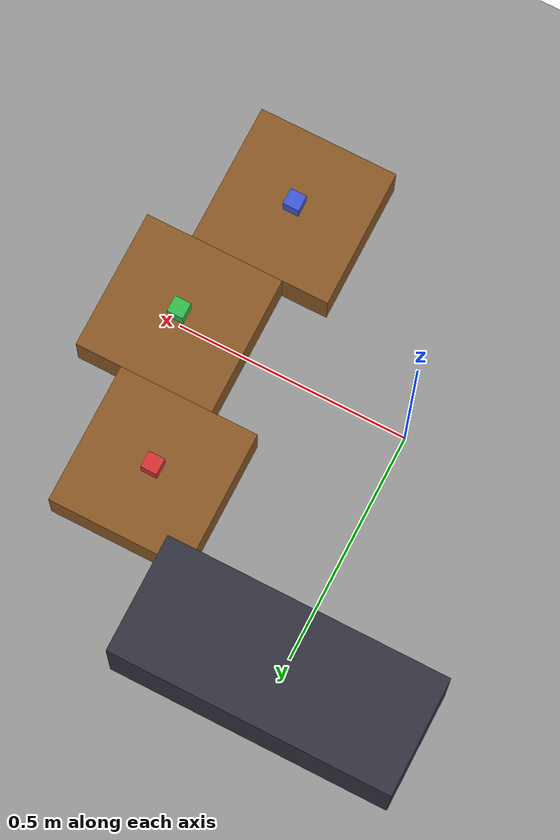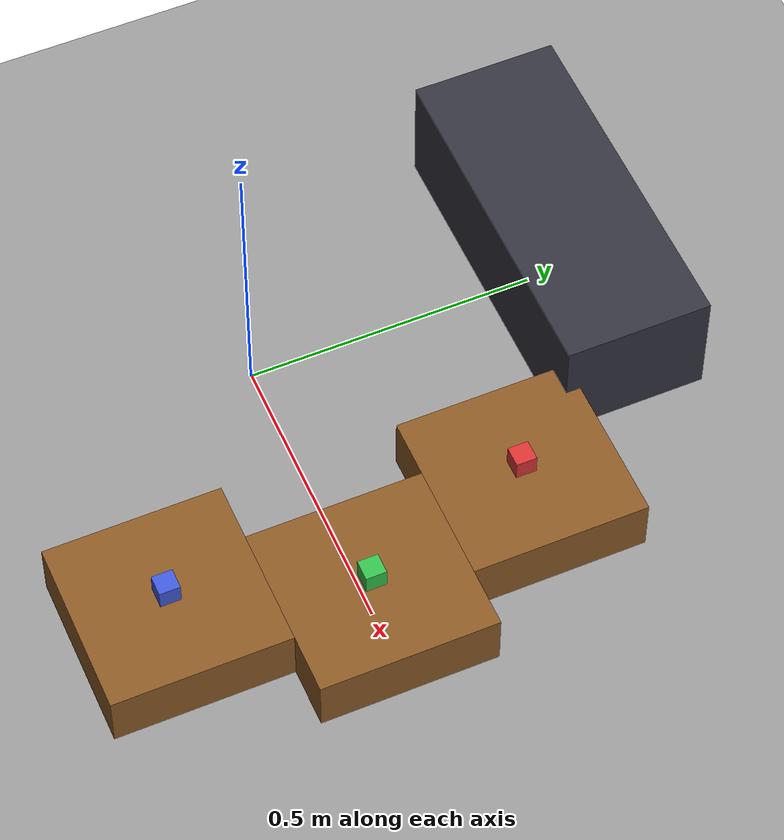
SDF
<?xml version="1.0" ?>
<sdf version="1.9">
  <world name="pallets_world">
    <physics name="1ms" type="ignored">
      <max_step_size>0.001</max_step_size>
      <real_time_factor>1.0</real_time_factor>
    </physics>
    <plugin filename="gz-sim-physics-system" name="gz::sim::systems::Physics"></plugin>
    <plugin filename="gz-sim-scene-broadcaster-system" name="gz::sim::systems::SceneBroadcaster"></plugin>
    <plugin filename="gz-sim-user-commands-system" name="gz::sim::systems::UserCommands"></plugin>
    <!-- 카메라 센서를 쓰려면 렌더링 시스템 플러그인이 필요함 (없으면 카메라가
         토픽에 아무것도 안 찍음). WSLg 화면 캡처가 근본적으로 안 되는 문제를
         우회하기 위해, 화면을 캡처하는 대신 이 카메라가 직접 렌더링한 영상을
         ROS2 토픽으로 받아서 데모 페이지에 스트리밍한다. -->
    <plugin filename="gz-sim-sensors-system" name="gz::sim::systems::Sensors">
      <render_engine>ogre2</render_engine>
    </plugin>

    <light type="directional" name="sun">
      <cast_shadows>true</cast_shadows>
      <pose>0 0 10 0 0 0</pose>
      <diffuse>0.8 0.8 0.8 1</diffuse>
      <specular>0.2 0.2 0.2 1</specular>
      <direction>-0.5 0.1 -0.9</direction>
    </light>

    <model name="ground_plane">
      <static>true</static>
      <link name="link">
        <collision name="collision">
          <geometry><plane><normal>0 0 1</normal><size>10 10</size></plane></geometry>
        </collision>
        <visual name="visual">
          <geometry><plane><normal>0 0 1</normal><size>10 10</size></plane></geometry>
          <material>
            <ambient>0.6 0.6 0.6 1</ambient>
            <diffuse>0.6 0.6 0.6 1</diffuse>
          </material>
        </visual>
      </link>
    </model>

    <!-- 로봇은 원점(0,0,0)에 panda_link0 기준으로 놓일 예정.
         팔레트/컨베이어는 그 앞쪽 반경 0.4~0.5m 안쪽(Panda 리치 약 0.855m)에 배치. -->

    <model name="pallet_1">
      <static>true</static>
      <pose>0.4 0.3 0.05 0 0 0</pose>
      <link name="link">
        <collision name="collision">
          <geometry><box><size>0.3 0.3 0.1</size></box></geometry>
          <surface><friction><ode><mu>1.0</mu><mu2>1.0</mu2></ode></friction></surface>
        </collision>
        <visual name="visual">
          <geometry><box><size>0.3 0.3 0.1</size></box></geometry>
          <material>
            <ambient>0.55 0.35 0.15 1</ambient>
            <diffuse>0.55 0.35 0.15 1</diffuse>
          </material>
        </visual>
      </link>
    </model>

    <model name="pallet_2">
      <static>true</static>
      <pose>0.5 0.0 0.05 0 0 0</pose>
      <link name="link">
        <collision name="collision">
          <geometry><box><size>0.3 0.3 0.1</size></box></geometry>
          <surface><friction><ode><mu>1.0</mu><mu2>1.0</mu2></ode></friction></surface>
        </collision>
        <visual name="visual">
          <geometry><box><size>0.3 0.3 0.1</size></box></geometry>
          <material>
            <ambient>0.55 0.35 0.15 1</ambient>
            <diffuse>0.55 0.35 0.15 1</diffuse>
          </material>
        </visual>
      </link>
    </model>

    <model name="pallet_3">
      <static>true</static>
      <pose>0.4 -0.3 0.05 0 0 0</pose>
      <link name="link">
        <collision name="collision">
          <geometry><box><size>0.3 0.3 0.1</size></box></geometry>
          <surface><friction><ode><mu>1.0</mu><mu2>1.0</mu2></ode></friction></surface>
        </collision>
        <visual name="visual">
          <geometry><box><size>0.3 0.3 0.1</size></box></geometry>
          <material>
            <ambient>0.55 0.35 0.15 1</ambient>
            <diffuse>0.55 0.35 0.15 1</diffuse>
          </material>
        </visual>
      </link>
    </model>

    <model name="conveyor">
      <static>true</static>
      <pose>0.0 0.55 0.1 0 0 0</pose>
      <link name="link">
        <collision name="collision">
          <geometry><box><size>0.6 0.25 0.2</size></box></geometry>
          <surface><friction><ode><mu>1.0</mu><mu2>1.0</mu2></ode></friction></surface>
        </collision>
        <visual name="visual">
          <geometry><box><size>0.6 0.25 0.2</size></box></geometry>
          <material>
            <ambient>0.2 0.2 0.25 1</ambient>
            <diffuse>0.2 0.2 0.25 1</diffuse>
          </material>
        </visual>
      </link>
    </model>

    <model name="material_a">
      <pose>0.4 0.3 0.118 0 0 0</pose>
      <link name="link">
        <inertial>
          <mass>0.08</mass>
          <inertia><ixx>1.6e-5</ixx><iyy>1.6e-5</iyy><izz>1.6e-5</izz><ixy>0</ixy><ixz>0</ixz><iyz>0</iyz></inertia>
        </inertial>
        <collision name="collision">
          <geometry><box><size>0.035 0.035 0.035</size></box></geometry>
          <surface>
            <friction><ode><mu>1.8</mu><mu2>1.8</mu2></ode></friction>
            <contact><ode><min_depth>0.001</min_depth><kp>1e6</kp><kd>1</kd></ode></contact>
          </surface>
        </collision>
        <visual name="visual">
          <geometry><box><size>0.035 0.035 0.035</size></box></geometry>
          <material><ambient>0.85 0.2 0.2 1</ambient><diffuse>0.85 0.2 0.2 1</diffuse></material>
        </visual>
      </link>
    </model>

    <model name="material_b">
      <pose>0.5 0.0 0.118 0 0 0</pose>
      <link name="link">
        <inertial>
          <mass>0.08</mass>
          <inertia><ixx>1.6e-5</ixx><iyy>1.6e-5</iyy><izz>1.6e-5</izz><ixy>0</ixy><ixz>0</ixz><iyz>0</iyz></inertia>
        </inertial>
        <collision name="collision">
          <geometry><box><size>0.035 0.035 0.035</size></box></geometry>
          <surface>
            <friction><ode><mu>1.8</mu><mu2>1.8</mu2></ode></friction>
            <contact><ode><min_depth>0.001</min_depth><kp>1e6</kp><kd>1</kd></ode></contact>
          </surface>
        </collision>
        <visual name="visual">
          <geometry><box><size>0.035 0.035 0.035</size></box></geometry>
          <material><ambient>0.2 0.75 0.3 1</ambient><diffuse>0.2 0.75 0.3 1</diffuse></material>
        </visual>
      </link>
    </model>

    <model name="material_c">
      <pose>0.4 -0.3 0.118 0 0 0</pose>
      <link name="link">
        <inertial>
          <mass>0.08</mass>
          <inertia><ixx>1.6e-5</ixx><iyy>1.6e-5</iyy><izz>1.6e-5</izz><ixy>0</ixy><ixz>0</ixz><iyz>0</iyz></inertia>
        </inertial>
        <collision name="collision">
          <geometry><box><size>0.035 0.035 0.035</size></box></geometry>
          <surface>
            <friction><ode><mu>1.8</mu><mu2>1.8</mu2></ode></friction>
            <contact><ode><min_depth>0.001</min_depth><kp>1e6</kp><kd>1</kd></ode></contact>
          </surface>
        </collision>
        <visual name="visual">
          <geometry><box><size>0.035 0.035 0.035</size></box></geometry>
          <material><ambient>0.25 0.35 0.85 1</ambient><diffuse>0.25 0.35 0.85 1</diffuse></material>
        </visual>
      </link>
    </model>

    <model name="scene_camera">
      <static>true</static>
      <pose>0.1 -1.0 0.9 0 0.35 1.5708</pose>
      <link name="link">
        <sensor name="scene_camera" type="camera">
          <camera>
            <horizontal_fov>1.2</horizontal_fov>
            <image>
              <width>960</width>
              <height>540</height>
            </image>
            <clip>
              <near>0.05</near>
              <far>10</far>
            </clip>
          </camera>
          <always_on>true</always_on>
          <update_rate>15</update_rate>
          <visualize>false</visualize>
          <topic>scene_camera/image</topic>
        </sensor>
      </link>
    </model>
  </world>
</sdf>
